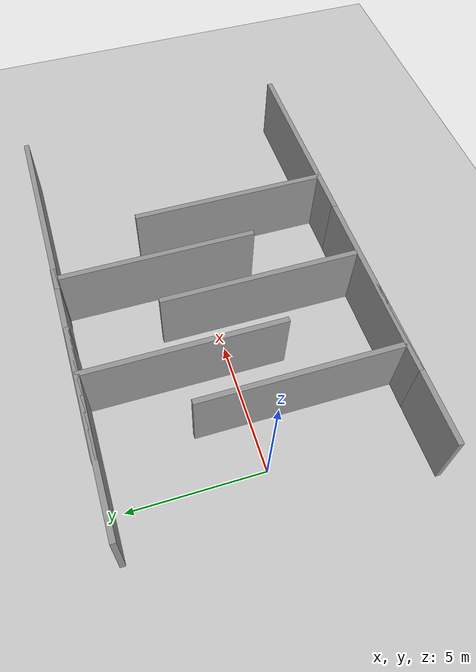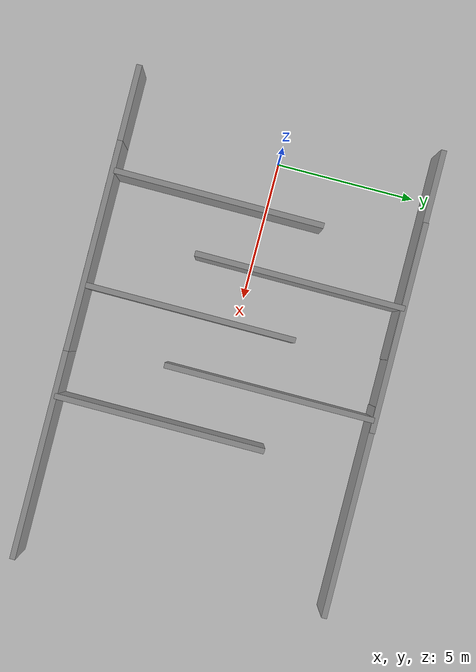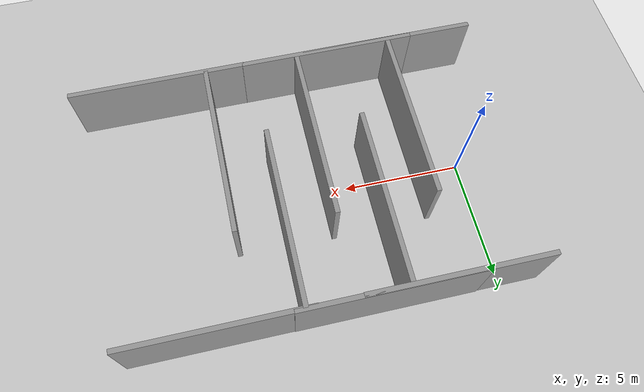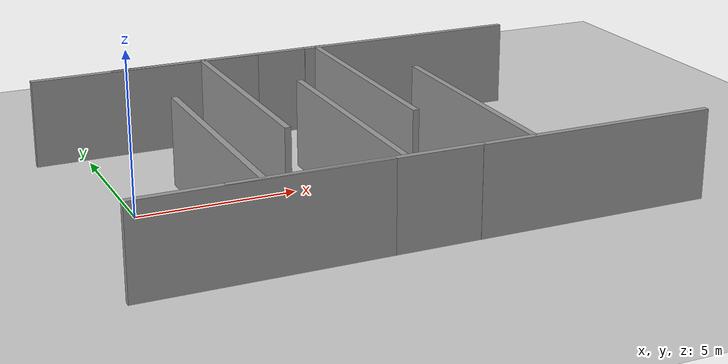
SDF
<sdf version="1.6">
 <world name="default">
  <plugin name="disable_physics" filename="libdisable_physics.so"/>
  <light name="sun" type="directional">
   <cast_shadows>0</cast_shadows>
   <pose>0 0 10 0 -0 0</pose>
   <diffuse>0.8 0.8 0.8 1</diffuse>
   <specular>0.2 0.2 0.2 1</specular>
   <attenuation>
    <range>1000</range>
    <constant>0.9</constant>
    <linear>0.01</linear>
    <quadratic>0.001</quadratic>
   </attenuation>
   <direction>-0.5 0.1 -0.9</direction>
  </light>
  <model name="ground_plane">
   <static>1</static>
   <link name="link">
    <collision name="collision">
     <geometry><plane><normal>0 0 1</normal><size>200 200</size></plane></geometry>
     <surface><friction><ode><mu>100</mu><mu2>50</mu2></ode></friction></surface>
    </collision>
    <visual name="visual">
     <cast_shadows>0</cast_shadows>
     <geometry><plane><normal>0 0 1</normal><size>200 200</size></plane></geometry>
     <material>
      <script><uri>file://media/materials/scripts/gazebo.material</uri><name>Gazebo/Grey</name></script>
     </material>
    </visual>
   </link>
  </model>
  <physics name="default_physics" default="0" type="ode">
   <max_step_size>0.001</max_step_size>
   <real_time_factor>1</real_time_factor>
   <real_time_update_rate>1000</real_time_update_rate>
  </physics>
  <scene><ambient>0.4 0.4 0.4 1</ambient><background>0.7 0.7 0.7 1</background><shadows>0</shadows></scene>
  <spherical_coordinates>
   <surface_model>EARTH_WGS84</surface_model>
   <latitude_deg>0</latitude_deg>
   <longitude_deg>0</longitude_deg>
   <elevation>0</elevation>
   <heading_deg>0</heading_deg>
  </spherical_coordinates>
  <gravity>0 0 -9.8</gravity>
  <magnetic_field>6e-06 2.3e-05 -4.2e-05</magnetic_field>
  <atmosphere type="adiabatic"/>
  <model name="grey_wall">
   <static>1</static>
   <link name="link">
    <pose>0 0 1.4 0 -0 0</pose>
    <collision name="collision"><geometry><box><size>7.5 0.2 2.8</size></box></geometry></collision>
    <visual name="visual">
     <cast_shadows>0</cast_shadows>
     <geometry><box><size>7.5 0.2 2.8</size></box></geometry>
     <material>
      <script>
       <uri>model://grey_wall/materials/scripts</uri>
       <uri>model://grey_wall/materials/textures</uri>
       <name>vrc/grey_wall</name>
      </script>
     </material>
    </visual>
   </link>
   <pose>1.95346 -1.69456 0 0 0 -1.57254</pose>
  </model>
  <model name="grey_wall_clone">
   <static>1</static>
   <link name="link">
    <pose>0 0 1.4 0 -0 0</pose>
    <collision name="collision"><geometry><box><size>7.5 0.2 2.8</size></box></geometry></collision>
    <visual name="visual">
     <cast_shadows>0</cast_shadows>
     <geometry><box><size>7.5 0.2 2.8</size></box></geometry>
     <material>
      <script>
       <uri>model://grey_wall/materials/scripts</uri>
       <uri>model://grey_wall/materials/textures</uri>
       <name>vrc/grey_wall</name>
      </script>
     </material>
    </visual>
   </link>
   <pose>4.01144 1.73629 0 0 0 -1.57254</pose>
  </model>
  <model name="grey_wall_clone_0">
   <static>1</static>
   <link name="link">
    <pose>0 0 1.4 0 -0 0</pose>
    <collision name="collision"><geometry><box><size>7.5 0.2 2.8</size></box></geometry></collision>
    <visual name="visual">
     <cast_shadows>0</cast_shadows>
     <geometry><box><size>7.5 0.2 2.8</size></box></geometry>
     <material>
      <script>
       <uri>model://grey_wall/materials/scripts</uri>
       <uri>model://grey_wall/materials/textures</uri>
       <name>vrc/grey_wall</name>
      </script>
     </material>
    </visual>
   </link>
   <pose>6.03089 -1.63626 0 0 0 -1.57254</pose>
  </model>
  <model name="grey_wall_clone_1">
   <static>1</static>
   <link name="link">
    <pose>0 0 1.4 0 -0 0</pose>
    <collision name="collision"><geometry><box><size>7.5 0.2 2.8</size></box></geometry></collision>
    <visual name="visual">
     <cast_shadows>0</cast_shadows>
     <geometry><box><size>7.5 0.2 2.8</size></box></geometry>
     <material>
      <script>
       <uri>model://grey_wall/materials/scripts</uri>
       <uri>model://grey_wall/materials/textures</uri>
       <name>vrc/grey_wall</name>
      </script>
     </material>
    </visual>
   </link>
   <pose>8.01653 1.69324 0 0 0 -1.57254</pose>
  </model>
  <model name="grey_wall_clone_2">
   <static>1</static>
   <link name="link">
    <pose>0 0 1.4 0 -0 0</pose>
    <collision name="collision"><geometry><box><size>7.5 0.2 2.8</size></box></geometry></collision>
    <visual name="visual">
     <cast_shadows>0</cast_shadows>
     <geometry><box><size>7.5 0.2 2.8</size></box></geometry>
     <material>
      <script>
       <uri>model://grey_wall/materials/scripts</uri>
       <uri>model://grey_wall/materials/textures</uri>
       <name>vrc/grey_wall</name>
      </script>
     </material>
    </visual>
   </link>
   <pose>10.0057 -1.70441 0 0 0 -1.57254</pose>
  </model>
  <model name="grey_wall_clone_1_clone">
   <static>1</static>
   <link name="link">
    <pose>0 0 1.4 0 -0 0</pose>
    <collision name="collision"><geometry><box><size>7.5 0.2 2.8</size></box></geometry></collision>
    <visual name="visual">
     <cast_shadows>0</cast_shadows>
     <geometry><box><size>7.5 0.2 2.8</size></box></geometry>
     <material>
      <script>
       <uri>model://grey_wall/materials/scripts</uri>
       <uri>model://grey_wall/materials/textures</uri>
       <name>vrc/grey_wall</name>
      </script>
     </material>
    </visual>
   </link>
   <pose>4.71262 5.45915 0 0 -0 0.005363</pose>
  </model>
  <model name="grey_wall_clone_1_clone_clone">
   <static>1</static>
   <link name="link">
    <pose>0 0 1.4 0 -0 0</pose>
    <collision name="collision"><geometry><box><size>7.5 0.2 2.8</size></box></geometry></collision>
    <visual name="visual">
     <cast_shadows>0</cast_shadows>
     <geometry><box><size>7.5 0.2 2.8</size></box></geometry>
     <material>
      <script>
       <uri>model://grey_wall/materials/scripts</uri>
       <uri>model://grey_wall/materials/textures</uri>
       <name>vrc/grey_wall</name>
      </script>
     </material>
    </visual>
   </link>
   <pose>11.3071 5.47686 0 0 -0 0.005363</pose>
  </model>
  <model name="grey_wall_clone_1_clone_clone_0">
   <static>1</static>
   <link name="link">
    <pose>0 0 1.4 0 -0 0</pose>
    <collision name="collision"><geometry><box><size>7.5 0.2 2.8</size></box></geometry></collision>
    <visual name="visual">
     <cast_shadows>0</cast_shadows>
     <geometry><box><size>7.5 0.2 2.8</size></box></geometry>
     <material>
      <script>
       <uri>model://grey_wall/materials/scripts</uri>
       <uri>model://grey_wall/materials/textures</uri>
       <name>vrc/grey_wall</name>
      </script>
     </material>
    </visual>
   </link>
   <pose>4.64715 -5.48295 0 0 -0 0.005363</pose>
  </model>
  <model name="grey_wall_clone_1_clone_clone_1">
   <static>1</static>
   <link name="link">
    <pose>0 0 1.4 0 -0 0</pose>
    <collision name="collision"><geometry><box><size>7.5 0.2 2.8</size></box></geometry></collision>
    <visual name="visual">
     <cast_shadows>0</cast_shadows>
     <geometry><box><size>7.5 0.2 2.8</size></box></geometry>
     <material>
      <script>
       <uri>model://grey_wall/materials/scripts</uri>
       <uri>model://grey_wall/materials/textures</uri>
       <name>vrc/grey_wall</name>
      </script>
     </material>
    </visual>
   </link>
   <pose>12.0752 -5.44894 0 0 -0 0.005363</pose>
  </model>
  <model name="grey_wall_clone_1_clone_clone_2">
   <static>1</static>
   <link name="link">
    <pose>0 0 1.4 0 -0 0</pose>
    <collision name="collision"><geometry><box><size>7.5 0.2 2.8</size></box></geometry></collision>
    <visual name="visual">
     <cast_shadows>0</cast_shadows>
     <geometry><box><size>7.5 0.2 2.8</size></box></geometry>
     <material>
      <script>
       <uri>model://grey_wall/materials/scripts</uri>
       <uri>model://grey_wall/materials/textures</uri>
       <name>vrc/grey_wall</name>
      </script>
     </material>
    </visual>
   </link>
   <pose>1.95202 -5.49895 0 0 -0 0.005363</pose>
  </model>
  <model name="grey_wall_clone_1_clone_clone_3">
   <static>1</static>
   <link name="link">
    <pose>0 0 1.4 0 -0 0</pose>
    <collision name="collision"><geometry><box><size>7.5 0.2 2.8</size></box></geometry></collision>
    <visual name="visual">
     <cast_shadows>0</cast_shadows>
     <geometry><box><size>7.5 0.2 2.8</size></box></geometry>
     <material>
      <script>
       <uri>model://grey_wall/materials/scripts</uri>
       <uri>model://grey_wall/materials/textures</uri>
       <name>vrc/grey_wall</name>
      </script>
     </material>
    </visual>
   </link>
   <pose>2.13388 5.42218 0 0 -0 0.005363</pose>
  </model>
 </world>
</sdf>
